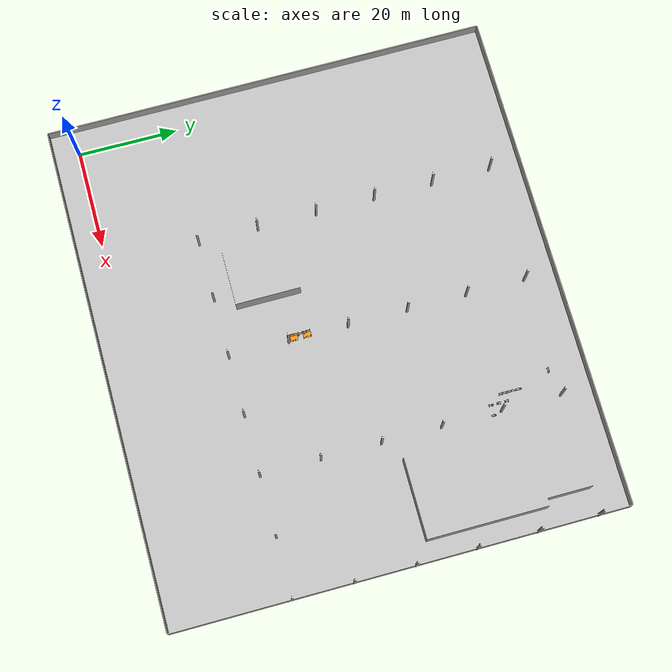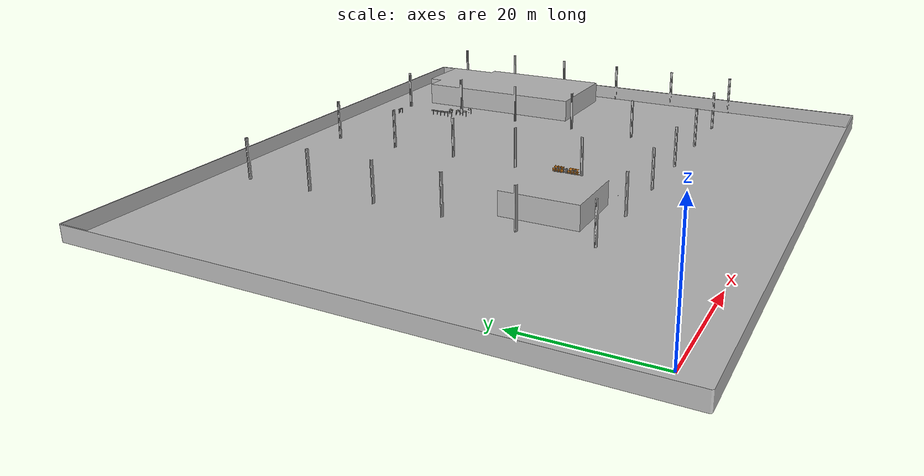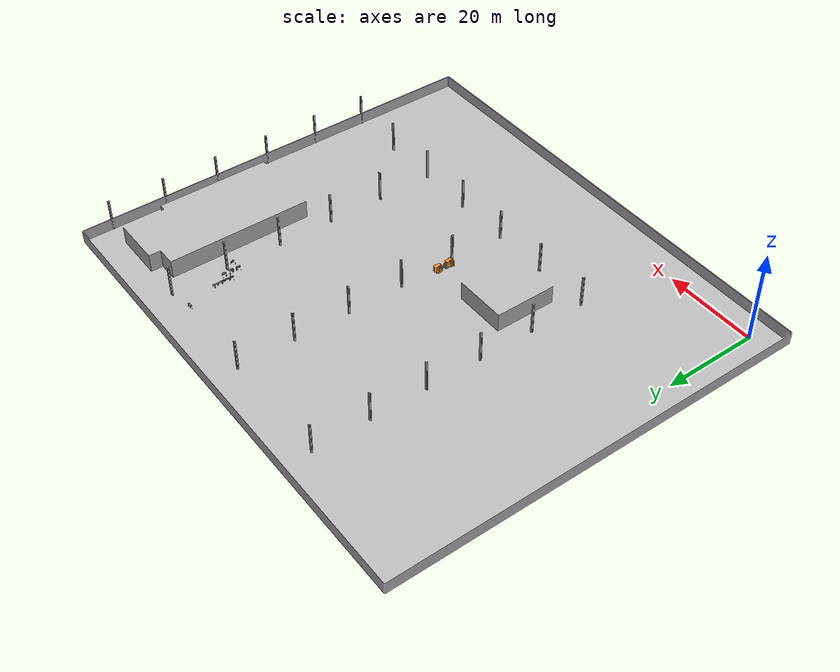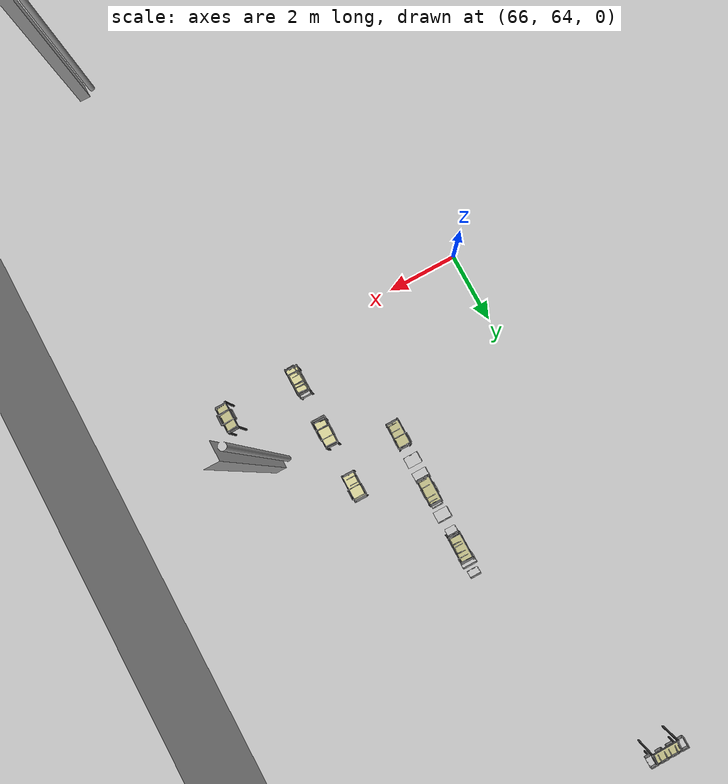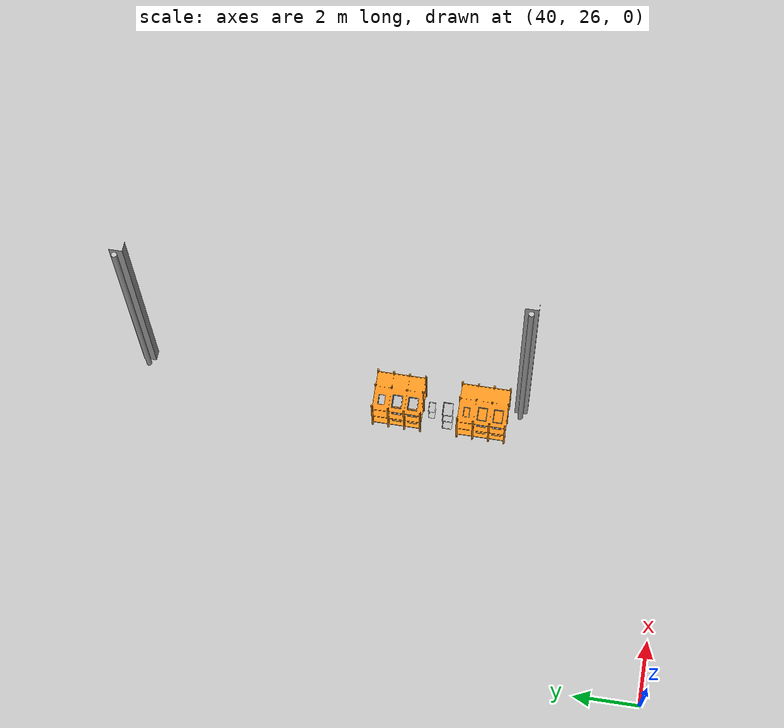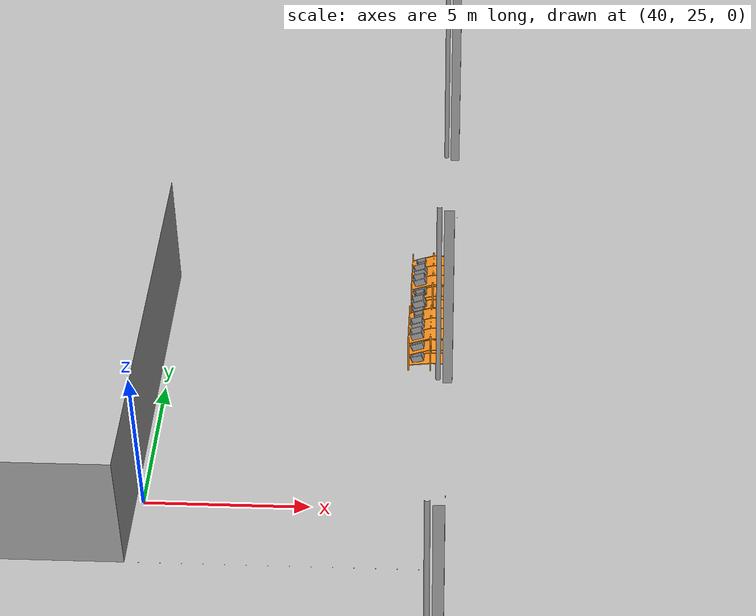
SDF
<sdf version="1.4">
 <world name="TOFAS Shopfloor Scenario">
  <physics type="ode">
   <max_step_size>0.01</max_step_size>
   <real_time_factor>1</real_time_factor>
   <real_time_update_rate>1000</real_time_update_rate>
   <gravity>0 0 -9.8</gravity>
  </physics>
  <scene>
   <ambient>0.9 0.9 0.9 1.0</ambient>
   <background>0.5 0.5 0.5 1.0</background>
   <shadows>false</shadows>
   <grid>true</grid>
  </scene>
  <light name="shopfloor_light" type="directional">
   <pose>70 70 20 0 0 0</pose>
   <cast_shadows>false</cast_shadows>
   <diffuse>0.5 0.5 0.5 1.0</diffuse>
   <specular>0.2 0.2 0.2 1.0</specular>
   <attenuation>
    <range>10000</range>
    <linear>0.01</linear>
    <constant>0.9</constant>
    <quadratic>0.001</quadratic>
   </attenuation>
   <direction>0.5 0.1 -0.9</direction>
  </light>
  <include>
   <uri>model://container_racks</uri>
   <name>Market 1</name>
   <pose>48.343 34.563 0 0 0 -1.57079632679</pose>
  </include>
  <include>
   <uri>model://container_racks</uri>
   <name>Market 3</name>
   <pose>48.343 31.902 0 0 0 -1.57079632679</pose>
  </include>
  <include><uri>model://walls</uri><name>World</name></include>
  <include>
   <uri>model://op_station</uri>
   <name>Station RAAL_OP30</name>
   <pose>67.656 77.861 0 0 0 -1.57079632679</pose>
   <static>true</static>
  </include>
  <include>
   <uri>model://eurocontainer_A</uri>
   <name>Container RAAL_OP31</name>
   <pose>67.206 77.861 0.8 0 0 0</pose>
   <static>true</static>
  </include>
  <include>
   <uri>model://eurocontainer_A</uri>
   <name>Container RAAL_OP32</name>
   <pose>67.506 77.861 0.8 0 0 0</pose>
   <static>true</static>
  </include>
  <include>
   <uri>model://eurocontainer_A</uri>
   <name>Container RAAL_OP33</name>
   <pose>67.806 77.861 0.8 0 0 0</pose>
   <static>true</static>
  </include>
  <include>
   <uri>model://eurocontainer_A</uri>
   <name>Container RAAL_OP31</name>
   <pose>68.106 77.861 0.8 0 0 0</pose>
   <static>true</static>
  </include>
  <include>
   <uri>model://op_station</uri>
   <name>Station RAAL_OP50</name>
   <pose>69.736 70.99 0 0 0 3.14159265359</pose>
   <static>true</static>
  </include>
  <include>
   <uri>model://eurocontainer_A</uri>
   <name>Container RAAL_OP51</name>
   <pose>69.736 70.49 0.8 0 0 -1.57079632679</pose>
   <static>true</static>
  </include>
  <include>
   <uri>model://eurocontainer_A</uri>
   <name>Container RAAL_OP52</name>
   <pose>69.736 70.74 0.8 0 0 -1.57079632679</pose>
   <static>true</static>
  </include>
  <include>
   <uri>model://eurocontainer_A</uri>
   <name>Container RAAL_OP53</name>
   <pose>69.736 70.99 0.8 0 0 -1.57079632679</pose>
   <static>true</static>
  </include>
  <include>
   <uri>model://eurocontainer_C</uri>
   <name>Container RAAL_OP54</name>
   <pose>69.736 71.34 0.8 0 0 -1.57079632679</pose>
   <static>true</static>
  </include>
  <include>
   <uri>model://eurocontainer_A</uri>
   <name>Container RAAL_OP54</name>
   <pose>69.736 71.69 0.8 0 0 -1.57079632679</pose>
   <static>true</static>
  </include>
  <include>
   <uri>model://op_station</uri>
   <name>Station RAAL_OP60</name>
   <pose>69.736 69.326 0 0 0 3.14159265359</pose>
   <static>true</static>
  </include>
  <include>
   <uri>model://eurocontainer_C</uri>
   <name>Container RAAL_OP61</name>
   <pose>69.736 68.426 0.8 0 0 -1.57079632679</pose>
   <static>true</static>
  </include>
  <include>
   <uri>model://eurocontainer_C</uri>
   <name>Container RAAL_OP62</name>
   <pose>69.736 68.876 0.8 0 0 -1.57079632679</pose>
   <static>true</static>
  </include>
  <include>
   <uri>model://eurocontainer_C</uri>
   <name>Container RAAL_OP63</name>
   <pose>69.736 69.326 0.8 0 0 -1.57079632679</pose>
   <static>true</static>
  </include>
  <include>
   <uri>model://eurocontainer_A</uri>
   <name>Container RAAL_OP64</name>
   <pose>69.736 69.676 0.8 0 0 -1.57079632679</pose>
   <static>true</static>
  </include>
  <include>
   <uri>model://eurocontainer_C</uri>
   <name>Container RAAL_OP65</name>
   <pose>69.736 70.026 0.8 0 0 -1.57079632679</pose>
   <static>true</static>
  </include>
  <include>
   <uri>model://op_station</uri>
   <name>Station RAAL_OP70</name>
   <pose>69.736 67.662 0 0 0 3.14159265359</pose>
   <static>true</static>
  </include>
  <include>
   <uri>model://eurocontainer_A</uri>
   <name>Container RAAL_OP71</name>
   <pose>69.736 67.462 0.8 0 0 -1.57079632679</pose>
   <static>true</static>
  </include>
  <include>
   <uri>model://eurocontainer_B</uri>
   <name>Container RAAL_OP72</name>
   <pose>69.736 67.862 0.8 0 0 -1.57079632679</pose>
   <static>true</static>
  </include>
  <include>
   <uri>model://op_station</uri>
   <name>Station RWAL_OP10</name>
   <pose>71.391 65.151 0 0 0 0</pose>
   <static>true</static>
  </include>
  <include>
   <uri>model://eurocontainer_A</uri>
   <name>Container RWAL_OP10</name>
   <pose>71.391 64.901 0.8 0 0 0</pose>
   <static>true</static>
  </include>
  <include>
   <uri>model://eurocontainer_B</uri>
   <name>Container RWAL_OP11</name>
   <pose>71.391 65.151 0.8 0 0 0</pose>
   <static>true</static>
  </include>
  <include>
   <uri>model://eurocontainer_B</uri>
   <name>Container RWAL_OP13</name>
   <pose>71.391 65.451 0.8 0 0 0</pose>
   <static>true</static>
  </include>
  <include>
   <uri>model://op_station</uri>
   <name>Station RWAL_OP20</name>
   <pose>71.391 66.726 0 0 0 0</pose>
   <static>true</static>
  </include>
  <include>
   <uri>model://eurocontainer_A</uri>
   <name>Container RWAL_OP21</name>
   <pose>71.391 66.476 0.8 0 0 -1.57079632679</pose>
   <static>true</static>
  </include>
  <include>
   <uri>model://eurocontainer_B</uri>
   <name>Container RWAL_OP22</name>
   <pose>71.391 66.726 0.8 0 0 -1.57079632679</pose>
   <static>true</static>
  </include>
  <include>
   <uri>model://eurocontainer_B</uri>
   <name>Container RWAL_OP23</name>
   <pose>71.391 66.451 0.8 0 0 -1.57079632679</pose>
   <static>true</static>
  </include>
  <include>
   <uri>model://op_station</uri>
   <name>Station RWAL_OP20</name>
   <pose>71.391 68.301 0 0 0 0</pose>
   <static>true</static>
  </include>
  <include>
   <uri>model://eurocontainer_A</uri>
   <name>Container RWAL_OP31</name>
   <pose>71.391 68.151 0.8 0 0 -1.57079632679</pose>
   <static>true</static>
  </include>
  <include>
   <uri>model://eurocontainer_B</uri>
   <name>Container RWAL_OP10</name>
   <pose>71.391 68.451 0.8 0 0 -1.57079632679</pose>
   <static>true</static>
  </include>
  <include>
   <uri>model://op_station</uri>
   <name>Station RWAL_OP20</name>
   <pose>73.452 65.151 0 0 0 3.14159265359</pose>
   <static>true</static>
  </include>
  <include>
   <uri>model://eurocontainer_B</uri>
   <name>Container RAAL_OP63</name>
   <pose>73.452 65.151 0.8 0 0 -1.57079632679</pose>
   <static>true</static>
  </include>
  <include>
   <uri>model://eurocontainer_A</uri>
   <name>Container Sp111</name>
   <pose>48.023 35.059 1.240 0.349066 0 -1.57079632679</pose>
   <static>true</static>
  </include>
  <include>
   <uri>model://eurocontainer_B</uri>
   <name>Container Sp121</name>
   <pose>48.023 34.564 1.225 0.349066 0 -1.57079632679</pose>
   <static>true</static>
  </include>
  <include>
   <uri>model://eurocontainer_B</uri>
   <name>Container Sp131</name>
   <pose>48.023 34.069 1.225 0.349066 0 -1.57079632679</pose>
   <static>true</static>
  </include>
  <include>
   <uri>model://eurocontainer_A</uri>
   <name>Container Sp112</name>
   <pose>48.023 35.059 0.768  0.349066 0 -1.57079632679</pose>
   <static>true</static>
  </include>
  <include>
   <uri>model://eurocontainer_B</uri>
   <name>Container Sp122</name>
   <pose>48.023 34.564 0.768  0.349066 0 -1.57079632679</pose>
   <static>true</static>
  </include>
  <include>
   <uri>model://eurocontainer_B</uri>
   <name>Container Sp132</name>
   <pose>48.023 34.069 0.768  0.349066 0 -1.57079632679</pose>
   <static>true</static>
  </include>
  <include>
   <uri>model://eurocontainer_A</uri>
   <name>Container Sp112</name>
   <pose>48.023 35.059 0.243 0.349066 0 -1.57079632679</pose>
   <static>true</static>
  </include>
  <include>
   <uri>model://eurocontainer_B</uri>
   <name>Container Sp122</name>
   <pose>48.023 34.564 0.243  0.349066 0 -1.57079632679</pose>
   <static>true</static>
  </include>
  <include>
   <uri>model://eurocontainer_B</uri>
   <name>Container Sp132</name>
   <pose>48.023 34.069 0.243 0.349066 0 -1.57079632679</pose>
   <static>true</static>
  </include>
  <include>
   <uri>model://eurocontainer_A</uri>
   <name>Container Sp211</name>
   <pose>48.023 33.475 1.218 0.349066 0 -1.57079632679</pose>
   <static>true</static>
  </include>
  <include>
   <uri>model://eurocontainer_B</uri>
   <name>Container Sp221</name>
   <pose>48.023 32.98 1.218  0.349066 0 -1.57079632679</pose>
   <static>true</static>
  </include>
  <include>
   <uri>model://eurocontainer_A</uri>
   <name>Container Sp212</name>
   <pose>48.023 33.475 0.768 0.349066 0 -1.57079632679</pose>
   <static>true</static>
  </include>
  <include>
   <uri>model://eurocontainer_B</uri>
   <name>Container Sp222</name>
   <pose>48.023 32.98 0.768  0.349066 0 -1.57079632679</pose>
   <static>true</static>
  </include>
  <include>
   <uri>model://eurocontainer_B</uri>
   <name>Container Sp222</name>
   <pose>48.023 32.98 0.243 0.349066 0 -1.57079632679</pose>
   <static>true</static>
  </include>
  <include>
   <uri>model://eurocontainer_A</uri>
   <name>Container Sp311</name>
   <pose>48.023 32.396 1.218 0.349066 0 -1.57079632679</pose>
   <static>true</static>
  </include>
  <include>
   <uri>model://eurocontainer_B</uri>
   <name>Container Sp321</name>
   <pose>48.023 31.901 1.218 0.349066 0 -1.57079632679</pose>
   <static>true</static>
  </include>
  <include>
   <uri>model://eurocontainer_B</uri>
   <name>Container Sp331</name>
   <pose>48.023 31.406 1.218  0.349066 0 -1.57079632679</pose>
   <static>true</static>
  </include>
  <include>
   <uri>model://eurocontainer_A</uri>
   <name>Container Sp312</name>
   <pose>48.023 32.396 0.768 0.349066 0 -1.57079632679</pose>
   <static>true</static>
  </include>
  <include>
   <uri>model://eurocontainer_B</uri>
   <name>Container Sp322</name>
   <pose>48.023 31.901 0.768  0.349066 0 -1.57079632679</pose>
   <static>true</static>
  </include>
  <include>
   <uri>model://eurocontainer_B</uri>
   <name>Container Sp332</name>
   <pose>48.023 31.406 0.768  0.349066 0 -1.57079632679</pose>
   <static>true</static>
  </include>
  <include>
   <uri>model://eurocontainer_A</uri>
   <name>Container Sp312</name>
   <pose>48.023 32.396 0.243 0.349066 0 -1.57079632679</pose>
   <static>true</static>
  </include>
  <include>
   <uri>model://eurocontainer_B</uri>
   <name>Container Sp322</name>
   <pose>48.023 31.901 0.243  0.349066 0 -1.57079632679</pose>
   <static>true</static>
  </include>
  <include>
   <uri>model://eurocontainer_B</uri>
   <name>Container Sp332</name>
   <pose>48.023 31.406 0.243  0.349066 0 -1.57079632679</pose>
   <static>true</static>
  </include>
 </world>
</sdf>

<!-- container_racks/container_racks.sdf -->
<sdf version="1.4">

  <model name="Container Racks">

    <static>true</static>

    <link name="link">

      <pose>0 0 0 0 0 0</pose>

      <collision name="racks_collision">
        <geometry>
          <mesh>
            <uri>model://container_racks/meshes/container_racks.dae</uri>
          </mesh>
        </geometry>
      </collision>

      <visual name="racks_visual">
        <geometry>
          <mesh>
            <uri>model://container_racks/meshes/container_racks.dae</uri>
          </mesh>
        </geometry>

        <material>
          <script>
            <uri>model://container_racks/materials/scripts</uri>
            <uri>model://container_racks/materials/textures</uri>
            <name>Racks/Orange</name>
          </script>
        </material>
      </visual>

    </link>

  </model>
</sdf>

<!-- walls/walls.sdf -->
<sdf version="1.4">

  <model name="TOFAS">

    <static>true</static>

    <link name="factory_structure">

      <pose>0 0 0 0 0 0</pose>

      <collision name="walls_collision">
        <geometry>
          <mesh>
            <uri>model://walls/meshes/TOFAS_without_markets.dae</uri>
          </mesh>
        </geometry>
      </collision>

      <visual name="walls_visual">
        <geometry>
          <mesh>
            <uri>model://walls/meshes/TOFAS_without_markets.dae</uri>
          </mesh>
        </geometry>

      </visual>

    </link>

  </model>
</sdf>

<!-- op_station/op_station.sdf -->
<sdf version="1.4">

  <model name="Op Station">

    <static>true</static>

    <link name="link">

      <pose>0 0 0 0 0 0</pose>

      <collision name="station_collision">
        <geometry>
          <mesh>
            <uri>model://op_station/meshes/Station_2Boxes.dae</uri>
          </mesh>
        </geometry>
      </collision>

      <visual name="station_visual">
        <geometry>
          <mesh>
            <uri>model://op_station/meshes/Station_2Boxes.dae</uri>
          </mesh>
        </geometry>

        <material>
          <script>
            <uri>model://op_station/materials/scripts</uri>
            <uri>model://op_station/materials/textures</uri>
          </script>
        </material>
      </visual>

    </link>

  </model>
</sdf>

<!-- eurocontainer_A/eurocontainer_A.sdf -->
<sdf version="1.4">

  <model name="European container Type A">

    <static>false</static>

    <link name="container_structure">

      <pose>0 0 0 0 0 0</pose>

      <collision name="container_collision">
        <geometry>
                <box>
                  <size>.20 .30 .15</size>
                </box>
        </geometry>
      </collision>

      <visual name="container_visual">
        <geometry>
          <mesh>
            <uri>model://eurocontainer_A/meshes/EuroContainer_A.dae</uri>
          </mesh>
        </geometry>

      </visual>

    </link>

  </model>
</sdf>

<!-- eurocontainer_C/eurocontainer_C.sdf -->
<sdf version="1.4">

  <model name="European container Type C">

    <static>false</static>

    <link name="Container_C_structure">

       <pose>0 0 0 0 0 0</pose>

      <collision name="container_collision">
        <geometry>
                <box>
                  <size>.30 .40 .15</size>
                </box>
        </geometry>
      </collision>
      <visual name="container_C_visual">
        <geometry>
          <mesh>
            <uri>model://eurocontainer_C/meshes/EuroContainer_C.dae</uri>
          </mesh>
        </geometry>

      </visual>

    </link>

  </model>
</sdf>

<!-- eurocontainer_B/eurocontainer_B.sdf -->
<sdf version="1.4">

  <model name="European Container Type B">

    <static>false</static>

    <link name="container_structure">

<pose>0 0 0 0 0 0</pose>

      <collision name="container_collision">
        <geometry>
                <box>
                  <size>.30 .40 .30</size>
                </box>
        </geometry>
      </collision>

      <visual name="container_visual">
        <geometry>
          <mesh>
            <uri>model://eurocontainer_B/meshes/EuroContainer_B_metric.dae</uri>
          </mesh>
        </geometry>

      </visual>

    </link>

  </model>
</sdf>
